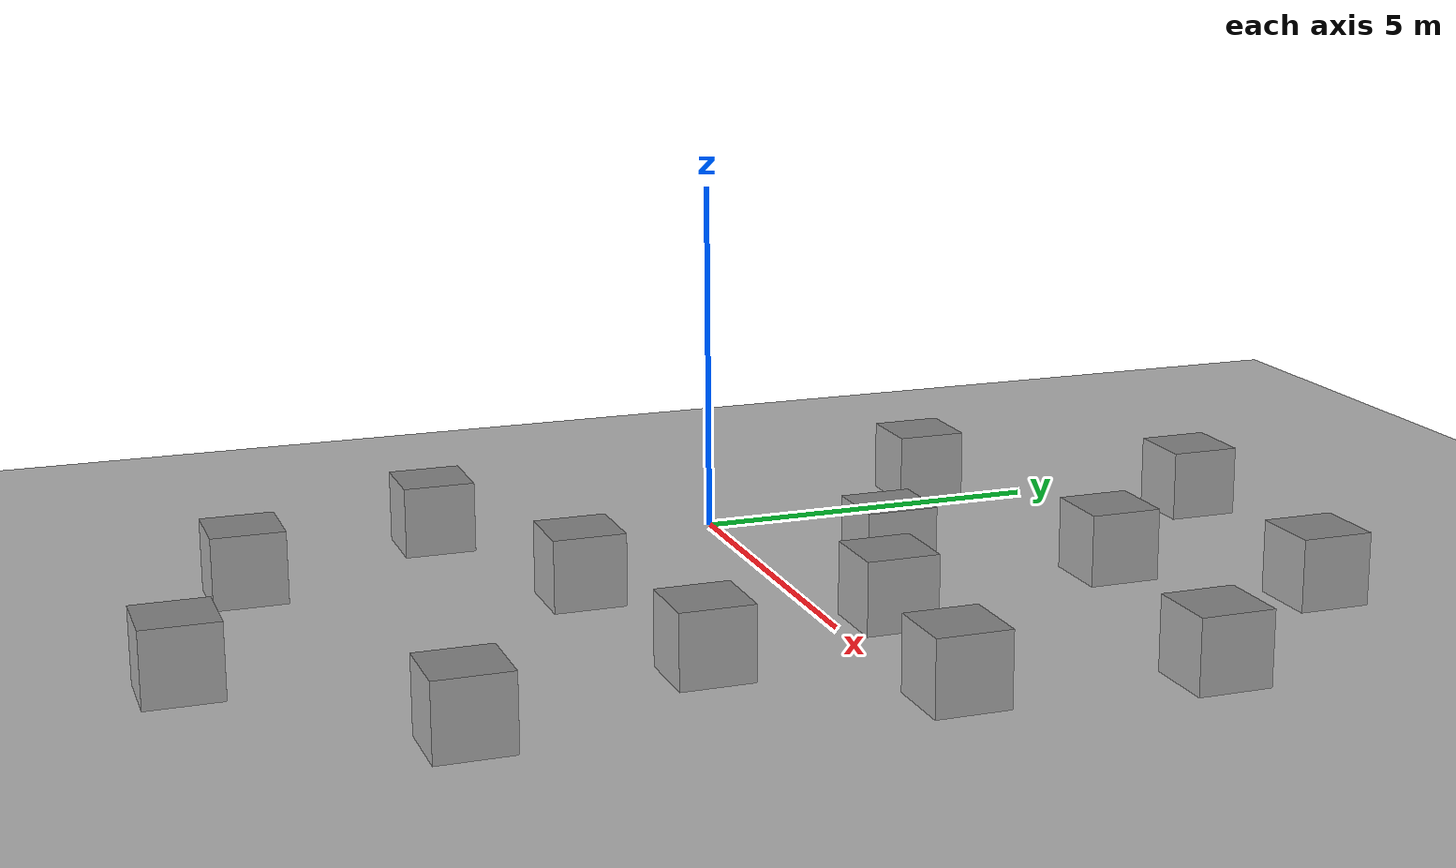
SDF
<sdf version="1.6">
 <world name="default">
  <light name="sun" type="directional">
   <pose>0 0 10 0 -0 0</pose>
   <diffuse>0.8 0.8 0.8 1</diffuse>
   <specular>0.1 0.1 0.1 1</specular>
   <attenuation>
    <range>1000</range>
    <constant>0.9</constant>
    <linear>0.01</linear>
    <quadratic>0.001</quadratic>
   </attenuation>
   <direction>-0.5 0.5 -1</direction>
  </light>
  <model name="ground_plane">
   <static>1</static>
   <link name="link">
    <collision name="collision">
     <geometry><plane><normal>0 0 1</normal><size>100 100</size></plane></geometry>
     <surface><friction><ode><mu>100</mu><mu2>50</mu2></ode></friction></surface>
    </collision>
    <visual name="visual">
     <cast_shadows>0</cast_shadows>
     <geometry><plane><normal>0 0 1</normal><size>100 100</size></plane></geometry>
     <material>
      <script><uri>file://media/materials/scripts/gazebo.material</uri><name>Gazebo/Grey</name></script>
     </material>
    </visual>
   </link>
  </model>
  <gravity>0 0 -9.8</gravity>
  <magnetic_field>6e-06 2.3e-05 -4.2e-05</magnetic_field>
  <atmosphere type="adiabatic"/>
  <physics name="default_physics" default="0" type="ode">
   <max_step_size>0.001</max_step_size>
   <real_time_factor>1</real_time_factor>
   <real_time_update_rate>1000</real_time_update_rate>
  </physics>
  <scene><ambient>0.4 0.4 0.4 1</ambient><background>0.7 0.7 0.7 1</background><shadows>1</shadows></scene>
  <spherical_coordinates>
   <surface_model>EARTH_WGS84</surface_model>
   <latitude_deg>0</latitude_deg>
   <longitude_deg>0</longitude_deg>
   <elevation>0</elevation>
   <heading_deg>0</heading_deg>
  </spherical_coordinates>
  <audio><device>default</device></audio>
  <model name="unit_box">
   <pose>-0.596222 3.59288 0.499995 -1e-05 0 0</pose>
   <link name="link">
    <inertial>
     <mass>1</mass>
     <inertia>
      <ixx>0.166667</ixx>
      <ixy>0</ixy>
      <ixz>0</ixz>
      <iyy>0.166667</iyy>
      <iyz>0</iyz>
      <izz>0.166667</izz>
     </inertia>
    </inertial>
    <collision name="collision"><geometry><box><size>1 1 1</size></box></geometry></collision>
    <visual name="visual">
     <geometry><box><size>1 1 1</size></box></geometry>
     <material>
      <script><name>Gazebo/Grey</name><uri>file://media/materials/scripts/gazebo.material</uri></script>
     </material>
    </visual>
   </link>
  </model>
  <model name="unit_box_clone">
   <pose>4.13443 4.38473 0.499995 0 1e-05 0</pose>
   <link name="link">
    <inertial>
     <mass>1</mass>
     <inertia>
      <ixx>0.166667</ixx>
      <ixy>0</ixy>
      <ixz>0</ixz>
      <iyy>0.166667</iyy>
      <iyz>0</iyz>
      <izz>0.166667</izz>
     </inertia>
    </inertial>
    <collision name="collision"><geometry><box><size>1 1 1</size></box></geometry></collision>
    <visual name="visual">
     <geometry><box><size>1 1 1</size></box></geometry>
     <material>
      <script><name>Gazebo/Grey</name><uri>file://media/materials/scripts/gazebo.material</uri></script>
     </material>
    </visual>
   </link>
  </model>
  <model name="unit_box_clone_0">
   <pose>2.99984 1.57829 0.499995 1e-05 -0 0</pose>
   <link name="link">
    <inertial>
     <mass>1</mass>
     <inertia>
      <ixx>0.166667</ixx>
      <ixy>0</ixy>
      <ixz>0</ixz>
      <iyy>0.166667</iyy>
      <iyz>0</iyz>
      <izz>0.166667</izz>
     </inertia>
    </inertial>
    <collision name="collision"><geometry><box><size>1 1 1</size></box></geometry></collision>
    <visual name="visual">
     <geometry><box><size>1 1 1</size></box></geometry>
     <material>
      <script><name>Gazebo/Grey</name><uri>file://media/materials/scripts/gazebo.material</uri></script>
     </material>
    </visual>
   </link>
  </model>
  <model name="unit_box_clone_1">
   <pose>7.99066 0.352304 0.5 0 -0 0</pose>
   <link name="link">
    <inertial>
     <mass>1</mass>
     <inertia>
      <ixx>0.166667</ixx>
      <ixy>0</ixy>
      <ixz>0</ixz>
      <iyy>0.166667</iyy>
      <iyz>0</iyz>
      <izz>0.166667</izz>
     </inertia>
    </inertial>
    <collision name="collision"><geometry><box><size>1 1 1</size></box></geometry></collision>
    <visual name="visual">
     <geometry><box><size>1 1 1</size></box></geometry>
     <material>
      <script><name>Gazebo/Grey</name><uri>file://media/materials/scripts/gazebo.material</uri></script>
     </material>
    </visual>
   </link>
  </model>
  <model name="unit_box_clone_2">
   <pose>2.70305 -2.75425 0.499995 0 1e-05 0</pose>
   <link name="link">
    <inertial>
     <mass>1</mass>
     <inertia>
      <ixx>0.166667</ixx>
      <ixy>0</ixy>
      <ixz>0</ixz>
      <iyy>0.166667</iyy>
      <iyz>0</iyz>
      <izz>0.166667</izz>
     </inertia>
    </inertial>
    <collision name="collision"><geometry><box><size>1 1 1</size></box></geometry></collision>
    <visual name="visual">
     <geometry><box><size>1 1 1</size></box></geometry>
     <material>
      <script><name>Gazebo/Grey</name><uri>file://media/materials/scripts/gazebo.material</uri></script>
     </material>
    </visual>
   </link>
  </model>
  <model name="unit_box_clone_3">
   <pose>4.99053 0.73886 0.499995 -1e-05 -0 -0</pose>
   <link name="link">
    <inertial>
     <mass>1</mass>
     <inertia>
      <ixx>0.166667</ixx>
      <ixy>0</ixy>
      <ixz>0</ixz>
      <iyy>0.166667</iyy>
      <iyz>0</iyz>
      <izz>0.166667</izz>
     </inertia>
    </inertial>
    <collision name="collision"><geometry><box><size>1 1 1</size></box></geometry></collision>
    <visual name="visual">
     <geometry><box><size>1 1 1</size></box></geometry>
     <material>
      <script><name>Gazebo/Grey</name><uri>file://media/materials/scripts/gazebo.material</uri></script>
     </material>
    </visual>
   </link>
  </model>
  <model name="unit_box_clone_4">
   <pose>6.07312 -2.14498 0.5 0 -0 0</pose>
   <link name="link">
    <inertial>
     <mass>1</mass>
     <inertia>
      <ixx>0.166667</ixx>
      <ixy>0</ixy>
      <ixz>0</ixz>
      <iyy>0.166667</iyy>
      <iyz>0</iyz>
      <izz>0.166667</izz>
     </inertia>
    </inertial>
    <collision name="collision"><geometry><box><size>1 1 1</size></box></geometry></collision>
    <visual name="visual">
     <geometry><box><size>1 1 1</size></box></geometry>
     <material>
      <script><name>Gazebo/Grey</name><uri>file://media/materials/scripts/gazebo.material</uri></script>
     </material>
    </visual>
   </link>
  </model>
  <model name="unit_box_clone_5">
   <pose>-0.418925 -4.04354 0.5 0 -0 0</pose>
   <link name="link">
    <inertial>
     <mass>1</mass>
     <inertia>
      <ixx>0.166667</ixx>
      <ixy>0</ixy>
      <ixz>0</ixz>
      <iyy>0.166667</iyy>
      <iyz>0</iyz>
      <izz>0.166667</izz>
     </inertia>
    </inertial>
    <collision name="collision"><geometry><box><size>1 1 1</size></box></geometry></collision>
    <visual name="visual">
     <geometry><box><size>1 1 1</size></box></geometry>
     <material>
      <script><name>Gazebo/Grey</name><uri>file://media/materials/scripts/gazebo.material</uri></script>
     </material>
    </visual>
   </link>
  </model>
  <model name="unit_box_clone_6">
   <pose>1.04226 -6.93805 0.5 0 -0 0</pose>
   <link name="link">
    <inertial>
     <mass>1</mass>
     <inertia>
      <ixx>0.166667</ixx>
      <ixy>0</ixy>
      <ixz>0</ixz>
      <iyy>0.166667</iyy>
      <iyz>0</iyz>
      <izz>0.166667</izz>
     </inertia>
    </inertial>
    <collision name="collision"><geometry><box><size>1 1 1</size></box></geometry></collision>
    <visual name="visual">
     <geometry><box><size>1 1 1</size></box></geometry>
     <material>
      <script><name>Gazebo/Grey</name><uri>file://media/materials/scripts/gazebo.material</uri></script>
     </material>
    </visual>
   </link>
  </model>
  <model name="unit_box_clone_7">
   <pose>1.64771 7.02168 0.499995 0 1e-05 0</pose>
   <link name="link">
    <inertial>
     <mass>1</mass>
     <inertia>
      <ixx>0.166667</ixx>
      <ixy>0</ixy>
      <ixz>0</ixz>
      <iyy>0.166667</iyy>
      <iyz>0</iyz>
      <izz>0.166667</izz>
     </inertia>
    </inertial>
    <collision name="collision"><geometry><box><size>1 1 1</size></box></geometry></collision>
    <visual name="visual">
     <geometry><box><size>1 1 1</size></box></geometry>
     <material>
      <script><name>Gazebo/Grey</name><uri>file://media/materials/scripts/gazebo.material</uri></script>
     </material>
    </visual>
   </link>
  </model>
  <model name="unit_box_clone_8">
   <pose>6.08896 6.46053 0.499995 0 1e-05 0</pose>
   <link name="link">
    <inertial>
     <mass>1</mass>
     <inertia>
      <ixx>0.166667</ixx>
      <ixy>0</ixy>
      <ixz>0</ixz>
      <iyy>0.166667</iyy>
      <iyz>0</iyz>
      <izz>0.166667</izz>
     </inertia>
    </inertial>
    <collision name="collision"><geometry><box><size>1 1 1</size></box></geometry></collision>
    <visual name="visual">
     <geometry><box><size>1 1 1</size></box></geometry>
     <material>
      <script><name>Gazebo/Grey</name><uri>file://media/materials/scripts/gazebo.material</uri></script>
     </material>
    </visual>
   </link>
  </model>
  <model name="unit_box_clone_9">
   <pose>8.41018 3.60731 0.499995 1e-05 -0 0</pose>
   <link name="link">
    <inertial>
     <mass>1</mass>
     <inertia>
      <ixx>0.166667</ixx>
      <ixy>0</ixy>
      <ixz>0</ixz>
      <iyy>0.166667</iyy>
      <iyz>0</iyz>
      <izz>0.166667</izz>
     </inertia>
    </inertial>
    <collision name="collision"><geometry><box><size>1 1 1</size></box></geometry></collision>
    <visual name="visual">
     <geometry><box><size>1 1 1</size></box></geometry>
     <material>
      <script><name>Gazebo/Grey</name><uri>file://media/materials/scripts/gazebo.material</uri></script>
     </material>
    </visual>
   </link>
  </model>
  <model name="unit_box_clone_10">
   <pose>7.34577 -5.45084 0.499995 -1e-05 0 0</pose>
   <link name="link">
    <inertial>
     <mass>1</mass>
     <inertia>
      <ixx>0.166667</ixx>
      <ixy>0</ixy>
      <ixz>0</ixz>
      <iyy>0.166667</iyy>
      <iyz>0</iyz>
      <izz>0.166667</izz>
     </inertia>
    </inertial>
    <collision name="collision"><geometry><box><size>1 1 1</size></box></geometry></collision>
    <visual name="visual">
     <geometry><box><size>1 1 1</size></box></geometry>
     <material>
      <script><name>Gazebo/Grey</name><uri>file://media/materials/scripts/gazebo.material</uri></script>
     </material>
    </visual>
   </link>
  </model>
  <model name="unit_box_clone_11">
   <pose>4.47663 -8.27098 0.5 -0 -0 -0</pose>
   <link name="link">
    <inertial>
     <mass>1</mass>
     <inertia>
      <ixx>0.166667</ixx>
      <ixy>0</ixy>
      <ixz>0</ixz>
      <iyy>0.166667</iyy>
      <iyz>0</iyz>
      <izz>0.166667</izz>
     </inertia>
    </inertial>
    <collision name="collision"><geometry><box><size>1 1 1</size></box></geometry></collision>
    <visual name="visual">
     <geometry><box><size>1 1 1</size></box></geometry>
     <material>
      <script><name>Gazebo/Grey</name><uri>file://media/materials/scripts/gazebo.material</uri></script>
     </material>
    </visual>
   </link>
  </model>
 </world>
</sdf>
